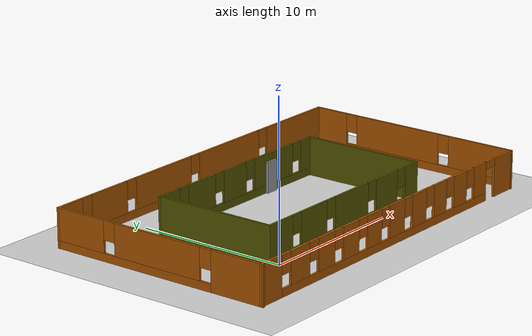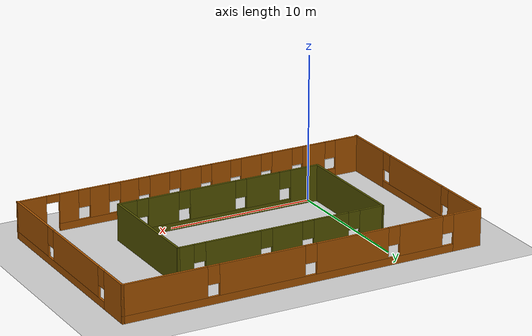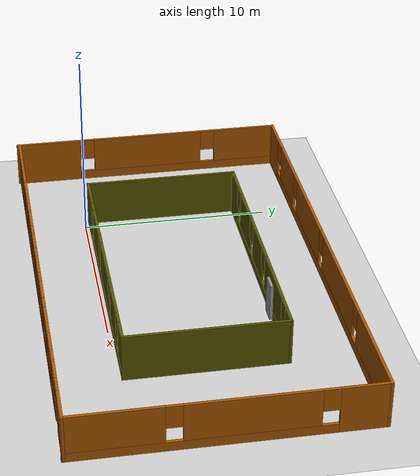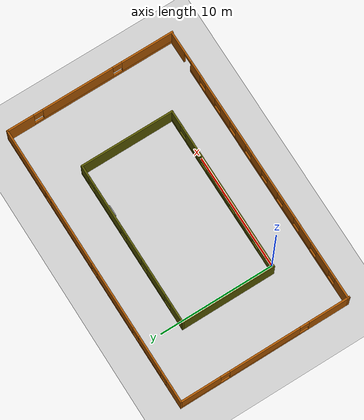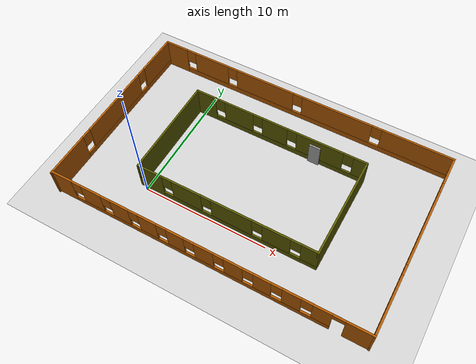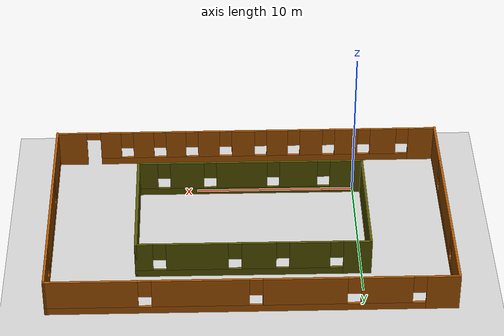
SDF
<sdf version="1.6">
 <world name="default">
  <model name="ground_plane">
   <static>1</static>
   <link name="link">
    <collision name="collision">
     <geometry><plane><normal>0 0 1</normal><size>100 100</size></plane></geometry>
     <surface><friction><ode><mu>100</mu><mu2>50</mu2></ode></friction></surface>
    </collision>
    <visual name="visual">
     <cast_shadows>0</cast_shadows>
     <geometry><plane><normal>0 0 1</normal><size>100 100</size></plane></geometry>
     <material>
      <script><uri>file://media/materials/scripts/gazebo.material</uri><name>Gazebo/Grey</name></script>
     </material>
    </visual>
   </link>
  </model>
  <model name="Building">
   <pose>6.81216 4.24314 0 0 -0 0</pose>
   <link name="Door_1">
    <collision name="Door_1_Collision">
     <geometry><box><size>0.9 0.17 2</size></box></geometry>
     <pose>0 0 1 0 -0 0</pose>
    </collision>
    <visual name="Door_1_Visual">
     <pose>0 0 1 0 -0 0</pose>
     <geometry><box><size>0.9 0.17 2</size></box></geometry>
     <material>
      <script><uri>file://media/materials/scripts/gazebo.material</uri><name>Gazebo/Grey</name></script>
     </material>
    </visual>
    <pose>2.94986 3.99433 0 0 -0 0</pose>
   </link>
   <link name="Wall_0">
    <pose>0 -7.35763 0 0 -0 0.002401</pose>
    <visual name="Wall_0_Visual_0">
     <pose>-11.5578 0 1.25 0 -0 0</pose>
     <geometry><box><size>1.79475 0.15 2.5</size></box></geometry>
     <material>
      <script><uri>file://media/materials/scripts/gazebo.material</uri><name>Gazebo/Grey</name></script>
      <ambient>0.666667 0.333333 0 1</ambient>
     </material>
     <meta><layer>0</layer></meta>
    </visual>
    <collision name="Wall_0_Collision_0">
     <geometry><box><size>1.79475 0.15 2.5</size></box></geometry>
     <pose>-11.5578 0 1.25 0 -0 0</pose>
    </collision>
    <visual name="Wall_0_Visual_1">
     <pose>11.4641 0 1.25 0 -0 0</pose>
     <geometry><box><size>1.98215 0.15 2.5</size></box></geometry>
     <material>
      <script><uri>file://media/materials/scripts/gazebo.material</uri><name>Gazebo/Grey</name></script>
      <ambient>0.666667 0.333333 0 1</ambient>
     </material>
     <meta><layer>0</layer></meta>
    </visual>
    <collision name="Wall_0_Collision_1">
     <geometry><box><size>1.98215 0.15 2.5</size></box></geometry>
     <pose>11.4641 0 1.25 0 -0 0</pose>
    </collision>
    <visual name="Wall_0_Visual_2">
     <pose>-0.543697 0 0.25 0 -0 0</pose>
     <geometry><box><size>20.2334 0.15 0.5</size></box></geometry>
     <material>
      <script><uri>file://media/materials/scripts/gazebo.material</uri><name>Gazebo/Grey</name></script>
      <ambient>0.666667 0.333333 0 1</ambient>
     </material>
     <meta><layer>0</layer></meta>
    </visual>
    <collision name="Wall_0_Collision_2">
     <geometry><box><size>20.2334 0.15 0.5</size></box></geometry>
     <pose>-0.543697 0 0.25 0 -0 0</pose>
    </collision>
    <visual name="Wall_0_Visual_3">
     <pose>-9.00211 0 1.5 0 -0 0</pose>
     <geometry><box><size>1.71659 0.15 2</size></box></geometry>
     <material>
      <script><uri>file://media/materials/scripts/gazebo.material</uri><name>Gazebo/Grey</name></script>
      <ambient>0.666667 0.333333 0 1</ambient>
     </material>
     <meta><layer>0</layer></meta>
    </visual>
    <collision name="Wall_0_Collision_3">
     <geometry><box><size>1.71659 0.15 2</size></box></geometry>
     <pose>-9.00211 0 1.5 0 -0 0</pose>
    </collision>
    <visual name="Wall_0_Visual_4">
     <pose>-6.57805 0 1.5 0 -0 0</pose>
     <geometry><box><size>1.53154 0.15 2</size></box></geometry>
     <material>
      <script><uri>file://media/materials/scripts/gazebo.material</uri><name>Gazebo/Grey</name></script>
      <ambient>0.666667 0.333333 0 1</ambient>
     </material>
     <meta><layer>0</layer></meta>
    </visual>
    <collision name="Wall_0_Collision_4">
     <geometry><box><size>1.53154 0.15 2</size></box></geometry>
     <pose>-6.57805 0 1.5 0 -0 0</pose>
    </collision>
    <visual name="Wall_0_Visual_5">
     <pose>-4.26501 0 1.5 0 -0 0</pose>
     <geometry><box><size>1.49454 0.15 2</size></box></geometry>
     <material>
      <script><uri>file://media/materials/scripts/gazebo.material</uri><name>Gazebo/Grey</name></script>
      <ambient>0.666667 0.333333 0 1</ambient>
     </material>
     <meta><layer>0</layer></meta>
    </visual>
    <collision name="Wall_0_Collision_5">
     <geometry><box><size>1.49454 0.15 2</size></box></geometry>
     <pose>-4.26501 0 1.5 0 -0 0</pose>
    </collision>
    <visual name="Wall_0_Visual_6">
     <pose>-2.02311 0 1.5 0 -0 0</pose>
     <geometry><box><size>1.38925 0.15 2</size></box></geometry>
     <material>
      <script><uri>file://media/materials/scripts/gazebo.material</uri><name>Gazebo/Grey</name></script>
      <ambient>0.666667 0.333333 0 1</ambient>
     </material>
     <meta><layer>0</layer></meta>
    </visual>
    <collision name="Wall_0_Collision_6">
     <geometry><box><size>1.38925 0.15 2</size></box></geometry>
     <pose>-2.02311 0 1.5 0 -0 0</pose>
    </collision>
    <visual name="Wall_0_Visual_7">
     <pose>0.21591 0 1.5 0 -0 0</pose>
     <geometry><box><size>1.48879 0.15 2</size></box></geometry>
     <material>
      <script><uri>file://media/materials/scripts/gazebo.material</uri><name>Gazebo/Grey</name></script>
      <ambient>0.666667 0.333333 0 1</ambient>
     </material>
     <meta><layer>0</layer></meta>
    </visual>
    <collision name="Wall_0_Collision_7">
     <geometry><box><size>1.48879 0.15 2</size></box></geometry>
     <pose>0.21591 0 1.5 0 -0 0</pose>
    </collision>
    <visual name="Wall_0_Visual_8">
     <pose>2.47057 0 1.5 0 -0 0</pose>
     <geometry><box><size>1.42052 0.15 2</size></box></geometry>
     <material>
      <script><uri>file://media/materials/scripts/gazebo.material</uri><name>Gazebo/Grey</name></script>
      <ambient>0.666667 0.333333 0 1</ambient>
     </material>
     <meta><layer>0</layer></meta>
    </visual>
    <collision name="Wall_0_Collision_8">
     <geometry><box><size>1.42052 0.15 2</size></box></geometry>
     <pose>2.47057 0 1.5 0 -0 0</pose>
    </collision>
    <visual name="Wall_0_Visual_9">
     <pose>4.63557 0 1.5 0 -0 0</pose>
     <geometry><box><size>1.30949 0.15 2</size></box></geometry>
     <material>
      <script><uri>file://media/materials/scripts/gazebo.material</uri><name>Gazebo/Grey</name></script>
      <ambient>0.666667 0.333333 0 1</ambient>
     </material>
     <meta><layer>0</layer></meta>
    </visual>
    <collision name="Wall_0_Collision_9">
     <geometry><box><size>1.30949 0.15 2</size></box></geometry>
     <pose>4.63557 0 1.5 0 -0 0</pose>
    </collision>
    <visual name="Wall_0_Visual_10">
     <pose>6.76357 0 1.5 0 -0 0</pose>
     <geometry><box><size>1.3465 0.15 2</size></box></geometry>
     <material>
      <script><uri>file://media/materials/scripts/gazebo.material</uri><name>Gazebo/Grey</name></script>
      <ambient>0.666667 0.333333 0 1</ambient>
     </material>
     <meta><layer>0</layer></meta>
    </visual>
    <collision name="Wall_0_Collision_10">
     <geometry><box><size>1.3465 0.15 2</size></box></geometry>
     <pose>6.76357 0 1.5 0 -0 0</pose>
    </collision>
    <visual name="Wall_0_Visual_11">
     <pose>8.90492 0 1.5 0 -0 0</pose>
     <geometry><box><size>1.33619 0.15 2</size></box></geometry>
     <material>
      <script><uri>file://media/materials/scripts/gazebo.material</uri><name>Gazebo/Grey</name></script>
      <ambient>0.666667 0.333333 0 1</ambient>
     </material>
     <meta><layer>0</layer></meta>
    </visual>
    <collision name="Wall_0_Collision_11">
     <geometry><box><size>1.33619 0.15 2</size></box></geometry>
     <pose>8.90492 0 1.5 0 -0 0</pose>
    </collision>
    <visual name="Wall_0_Visual_12">
     <pose>-10.2604 0 1.9 0 -0 0</pose>
     <geometry><box><size>0.8 0.15 1.2</size></box></geometry>
     <material>
      <script><uri>file://media/materials/scripts/gazebo.material</uri><name>Gazebo/Grey</name></script>
      <ambient>0.666667 0.333333 0 1</ambient>
     </material>
     <meta><layer>0</layer></meta>
    </visual>
    <collision name="Wall_0_Collision_12">
     <geometry><box><size>0.8 0.15 1.2</size></box></geometry>
     <pose>-10.2604 0 1.9 0 -0 0</pose>
    </collision>
    <visual name="Wall_0_Visual_13">
     <pose>-7.74382 0 1.9 0 -0 0</pose>
     <geometry><box><size>0.8 0.15 1.2</size></box></geometry>
     <material>
      <script><uri>file://media/materials/scripts/gazebo.material</uri><name>Gazebo/Grey</name></script>
      <ambient>0.666667 0.333333 0 1</ambient>
     </material>
     <meta><layer>0</layer></meta>
    </visual>
    <collision name="Wall_0_Collision_13">
     <geometry><box><size>0.8 0.15 1.2</size></box></geometry>
     <pose>-7.74382 0 1.9 0 -0 0</pose>
    </collision>
    <visual name="Wall_0_Visual_14">
     <pose>-5.41228 0 1.9 0 -0 0</pose>
     <geometry><box><size>0.8 0.15 1.2</size></box></geometry>
     <material>
      <script><uri>file://media/materials/scripts/gazebo.material</uri><name>Gazebo/Grey</name></script>
      <ambient>0.666667 0.333333 0 1</ambient>
     </material>
     <meta><layer>0</layer></meta>
    </visual>
    <collision name="Wall_0_Collision_14">
     <geometry><box><size>0.8 0.15 1.2</size></box></geometry>
     <pose>-5.41228 0 1.9 0 -0 0</pose>
    </collision>
    <visual name="Wall_0_Visual_15">
     <pose>-3.11774 0 1.9 0 -0 0</pose>
     <geometry><box><size>0.8 0.15 1.2</size></box></geometry>
     <material>
      <script><uri>file://media/materials/scripts/gazebo.material</uri><name>Gazebo/Grey</name></script>
      <ambient>0.666667 0.333333 0 1</ambient>
     </material>
     <meta><layer>0</layer></meta>
    </visual>
    <collision name="Wall_0_Collision_15">
     <geometry><box><size>0.8 0.15 1.2</size></box></geometry>
     <pose>-3.11774 0 1.9 0 -0 0</pose>
    </collision>
    <visual name="Wall_0_Visual_16">
     <pose>-0.928486 0 1.9 0 -0 0</pose>
     <geometry><box><size>0.8 0.15 1.2</size></box></geometry>
     <material>
      <script><uri>file://media/materials/scripts/gazebo.material</uri><name>Gazebo/Grey</name></script>
      <ambient>0.666667 0.333333 0 1</ambient>
     </material>
     <meta><layer>0</layer></meta>
    </visual>
    <collision name="Wall_0_Collision_16">
     <geometry><box><size>0.8 0.15 1.2</size></box></geometry>
     <pose>-0.928486 0 1.9 0 -0 0</pose>
    </collision>
    <visual name="Wall_0_Visual_17">
     <pose>1.36031 0 1.9 0 -0 0</pose>
     <geometry><box><size>0.8 0.15 1.2</size></box></geometry>
     <material>
      <script><uri>file://media/materials/scripts/gazebo.material</uri><name>Gazebo/Grey</name></script>
      <ambient>0.666667 0.333333 0 1</ambient>
     </material>
     <meta><layer>0</layer></meta>
    </visual>
    <collision name="Wall_0_Collision_17">
     <geometry><box><size>0.8 0.15 1.2</size></box></geometry>
     <pose>1.36031 0 1.9 0 -0 0</pose>
    </collision>
    <visual name="Wall_0_Visual_18">
     <pose>3.58083 0 1.9 0 -0 0</pose>
     <geometry><box><size>0.8 0.15 1.2</size></box></geometry>
     <material>
      <script><uri>file://media/materials/scripts/gazebo.material</uri><name>Gazebo/Grey</name></script>
      <ambient>0.666667 0.333333 0 1</ambient>
     </material>
     <meta><layer>0</layer></meta>
    </visual>
    <collision name="Wall_0_Collision_18">
     <geometry><box><size>0.8 0.15 1.2</size></box></geometry>
     <pose>3.58083 0 1.9 0 -0 0</pose>
    </collision>
    <visual name="Wall_0_Visual_19">
     <pose>5.69032 0 1.9 0 -0 0</pose>
     <geometry><box><size>0.8 0.15 1.2</size></box></geometry>
     <material>
      <script><uri>file://media/materials/scripts/gazebo.material</uri><name>Gazebo/Grey</name></script>
      <ambient>0.666667 0.333333 0 1</ambient>
     </material>
     <meta><layer>0</layer></meta>
    </visual>
    <collision name="Wall_0_Collision_19">
     <geometry><box><size>0.8 0.15 1.2</size></box></geometry>
     <pose>5.69032 0 1.9 0 -0 0</pose>
    </collision>
    <visual name="Wall_0_Visual_20">
     <pose>7.83682 0 1.9 0 -0 0</pose>
     <geometry><box><size>0.8 0.15 1.2</size></box></geometry>
     <material>
      <script><uri>file://media/materials/scripts/gazebo.material</uri><name>Gazebo/Grey</name></script>
      <ambient>0.666667 0.333333 0 1</ambient>
     </material>
     <meta><layer>0</layer></meta>
    </visual>
    <collision name="Wall_0_Collision_20">
     <geometry><box><size>0.8 0.15 1.2</size></box></geometry>
     <pose>7.83682 0 1.9 0 -0 0</pose>
    </collision>
    <visual name="Wall_0_Visual_21">
     <pose>10.023 0 2.25 0 -0 0</pose>
     <geometry><box><size>0.9 0.15 0.5</size></box></geometry>
     <material>
      <script><uri>file://media/materials/scripts/gazebo.material</uri><name>Gazebo/Grey</name></script>
      <ambient>0.666667 0.333333 0 1</ambient>
     </material>
     <meta><layer>0</layer></meta>
    </visual>
    <collision name="Wall_0_Collision_21">
     <geometry><box><size>0.9 0.15 0.5</size></box></geometry>
     <pose>10.023 0 2.25 0 -0 0</pose>
    </collision>
   </link>
   <link name="Wall_12">
    <collision name="Wall_12_Collision">
     <geometry><box><size>8.25 0.15 2.5</size></box></geometry>
     <pose>0 0 1.25 0 -0 0</pose>
    </collision>
    <visual name="Wall_12_Visual">
     <pose>0 0 1.25 0 -0 0</pose>
     <geometry><box><size>8.25 0.15 2.5</size></box></geometry>
     <material>
      <script><uri>file://media/materials/scripts/gazebo.material</uri><name>Gazebo/Grey</name></script>
      <ambient>0.333333 0.333333 0 1</ambient>
     </material>
     <meta><layer>0</layer></meta>
    </visual>
    <pose>-7.34158 0.069621 0 0 0 -1.5708</pose>
   </link>
   <link name="Wall_17">
    <pose>-0.166583 -3.98038 0 0 -0 0</pose>
    <visual name="Wall_17_Visual_0">
     <pose>-6.19156 0 1.25 0 -0 0</pose>
     <geometry><box><size>2.11688 0.15 2.5</size></box></geometry>
     <material>
      <script><uri>file://media/materials/scripts/gazebo.material</uri><name>Gazebo/Grey</name></script>
      <ambient>0.333333 0.333333 0 1</ambient>
     </material>
     <meta><layer>0</layer></meta>
    </visual>
    <collision name="Wall_17_Collision_0">
     <geometry><box><size>2.11688 0.15 2.5</size></box></geometry>
     <pose>-6.19156 0 1.25 0 -0 0</pose>
    </collision>
    <visual name="Wall_17_Visual_1">
     <pose>1.05844 0 0.25 0 -0 0</pose>
     <geometry><box><size>12.3831 0.15 0.5</size></box></geometry>
     <material>
      <script><uri>file://media/materials/scripts/gazebo.material</uri><name>Gazebo/Grey</name></script>
      <ambient>0.333333 0.333333 0 1</ambient>
     </material>
     <meta><layer>0</layer></meta>
    </visual>
    <collision name="Wall_17_Collision_1">
     <geometry><box><size>12.3831 0.15 0.5</size></box></geometry>
     <pose>1.05844 0 0.25 0 -0 0</pose>
    </collision>
    <visual name="Wall_17_Visual_2">
     <pose>-3.10907 0 1.5 0 -0 0</pose>
     <geometry><box><size>2.4481 0.15 2</size></box></geometry>
     <material>
      <script><uri>file://media/materials/scripts/gazebo.material</uri><name>Gazebo/Grey</name></script>
      <ambient>0.333333 0.333333 0 1</ambient>
     </material>
     <meta><layer>0</layer></meta>
    </visual>
    <collision name="Wall_17_Collision_2">
     <geometry><box><size>2.4481 0.15 2</size></box></geometry>
     <pose>-3.10907 0 1.5 0 -0 0</pose>
    </collision>
    <visual name="Wall_17_Visual_3">
     <pose>0.545036 0 1.5 0 -0 0</pose>
     <geometry><box><size>3.26012 0.15 2</size></box></geometry>
     <material>
      <script><uri>file://media/materials/scripts/gazebo.material</uri><name>Gazebo/Grey</name></script>
      <ambient>0.333333 0.333333 0 1</ambient>
     </material>
     <meta><layer>0</layer></meta>
    </visual>
    <collision name="Wall_17_Collision_3">
     <geometry><box><size>3.26012 0.15 2</size></box></geometry>
     <pose>0.545036 0 1.5 0 -0 0</pose>
    </collision>
    <visual name="Wall_17_Visual_4">
     <pose>4.05839 0 1.5 0 -0 0</pose>
     <geometry><box><size>2.1666 0.15 2</size></box></geometry>
     <material>
      <script><uri>file://media/materials/scripts/gazebo.material</uri><name>Gazebo/Grey</name></script>
      <ambient>0.333333 0.333333 0 1</ambient>
     </material>
     <meta><layer>0</layer></meta>
    </visual>
    <collision name="Wall_17_Collision_4">
     <geometry><box><size>2.1666 0.15 2</size></box></geometry>
     <pose>4.05839 0 1.5 0 -0 0</pose>
    </collision>
    <visual name="Wall_17_Visual_5">
     <pose>6.59585 0 1.5 0 -0 0</pose>
     <geometry><box><size>1.30831 0.15 2</size></box></geometry>
     <material>
      <script><uri>file://media/materials/scripts/gazebo.material</uri><name>Gazebo/Grey</name></script>
      <ambient>0.333333 0.333333 0 1</ambient>
     </material>
     <meta><layer>0</layer></meta>
    </visual>
    <collision name="Wall_17_Collision_5">
     <geometry><box><size>1.30831 0.15 2</size></box></geometry>
     <pose>6.59585 0 1.5 0 -0 0</pose>
    </collision>
    <visual name="Wall_17_Visual_6">
     <pose>-4.73312 0 1.9 0 -0 0</pose>
     <geometry><box><size>0.8 0.15 1.2</size></box></geometry>
     <material>
      <script><uri>file://media/materials/scripts/gazebo.material</uri><name>Gazebo/Grey</name></script>
      <ambient>0.333333 0.333333 0 1</ambient>
     </material>
     <meta><layer>0</layer></meta>
    </visual>
    <collision name="Wall_17_Collision_6">
     <geometry><box><size>0.8 0.15 1.2</size></box></geometry>
     <pose>-4.73312 0 1.9 0 -0 0</pose>
    </collision>
    <visual name="Wall_17_Visual_7">
     <pose>-1.48502 0 1.9 0 -0 0</pose>
     <geometry><box><size>0.8 0.15 1.2</size></box></geometry>
     <material>
      <script><uri>file://media/materials/scripts/gazebo.material</uri><name>Gazebo/Grey</name></script>
      <ambient>0.333333 0.333333 0 1</ambient>
     </material>
     <meta><layer>0</layer></meta>
    </visual>
    <collision name="Wall_17_Collision_7">
     <geometry><box><size>0.8 0.15 1.2</size></box></geometry>
     <pose>-1.48502 0 1.9 0 -0 0</pose>
    </collision>
    <visual name="Wall_17_Visual_8">
     <pose>2.5751 0 1.9 0 -0 0</pose>
     <geometry><box><size>0.8 0.15 1.2</size></box></geometry>
     <material>
      <script><uri>file://media/materials/scripts/gazebo.material</uri><name>Gazebo/Grey</name></script>
      <ambient>0.333333 0.333333 0 1</ambient>
     </material>
     <meta><layer>0</layer></meta>
    </visual>
    <collision name="Wall_17_Collision_8">
     <geometry><box><size>0.8 0.15 1.2</size></box></geometry>
     <pose>2.5751 0 1.9 0 -0 0</pose>
    </collision>
    <visual name="Wall_17_Visual_9">
     <pose>5.54169 0 1.9 0 -0 0</pose>
     <geometry><box><size>0.8 0.15 1.2</size></box></geometry>
     <material>
      <script><uri>file://media/materials/scripts/gazebo.material</uri><name>Gazebo/Grey</name></script>
      <ambient>0.333333 0.333333 0 1</ambient>
     </material>
     <meta><layer>0</layer></meta>
    </visual>
    <collision name="Wall_17_Collision_9">
     <geometry><box><size>0.8 0.15 1.2</size></box></geometry>
     <pose>5.54169 0 1.9 0 -0 0</pose>
    </collision>
   </link>
   <link name="Wall_18">
    <collision name="Wall_18_Collision">
     <geometry><box><size>8.25 0.15 2.5</size></box></geometry>
     <pose>0 0 1.25 0 -0 0</pose>
    </collision>
    <visual name="Wall_18_Visual">
     <pose>0 0 1.25 0 -0 0</pose>
     <geometry><box><size>8.25 0.15 2.5</size></box></geometry>
     <material>
      <script><uri>file://media/materials/scripts/gazebo.material</uri><name>Gazebo/Grey</name></script>
      <ambient>0.333333 0.333333 0 1</ambient>
     </material>
     <meta><layer>0</layer></meta>
    </visual>
    <pose>7.00842 0.069621 0 0 -0 1.5708</pose>
   </link>
   <link name="Wall_20">
    <pose>-0.166583 4.11962 0 0 -0 0</pose>
    <visual name="Wall_20_Visual_0">
     <pose>-6.37201 0 1.25 0 -0 0</pose>
     <geometry><box><size>1.75598 0.15 2.5</size></box></geometry>
     <material>
      <script><uri>file://media/materials/scripts/gazebo.material</uri><name>Gazebo/Grey</name></script>
      <ambient>0.333333 0.333333 0 1</ambient>
     </material>
     <meta><layer>0</layer></meta>
    </visual>
    <collision name="Wall_20_Collision_0">
     <geometry><box><size>1.75598 0.15 2.5</size></box></geometry>
     <pose>-6.37201 0 1.25 0 -0 0</pose>
    </collision>
    <visual name="Wall_20_Visual_1">
     <pose>0.87799 0 0.25 0 -0 0</pose>
     <geometry><box><size>12.744 0.15 0.5</size></box></geometry>
     <material>
      <script><uri>file://media/materials/scripts/gazebo.material</uri><name>Gazebo/Grey</name></script>
      <ambient>0.333333 0.333333 0 1</ambient>
     </material>
     <meta><layer>0</layer></meta>
    </visual>
    <collision name="Wall_20_Collision_1">
     <geometry><box><size>12.744 0.15 0.5</size></box></geometry>
     <pose>0.87799 0 0.25 0 -0 0</pose>
    </collision>
    <visual name="Wall_20_Visual_2">
     <pose>-3.44742 0 1.5 0 -0 0</pose>
     <geometry><box><size>2.49321 0.15 2</size></box></geometry>
     <material>
      <script><uri>file://media/materials/scripts/gazebo.material</uri><name>Gazebo/Grey</name></script>
      <ambient>0.333333 0.333333 0 1</ambient>
     </material>
     <meta><layer>0</layer></meta>
    </visual>
    <collision name="Wall_20_Collision_2">
     <geometry><box><size>2.49321 0.15 2</size></box></geometry>
     <pose>-3.44742 0 1.5 0 -0 0</pose>
    </collision>
    <visual name="Wall_20_Visual_3">
     <pose>-0.334657 0 1.5 0 -0 0</pose>
     <geometry><box><size>2.13231 0.15 2</size></box></geometry>
     <material>
      <script><uri>file://media/materials/scripts/gazebo.material</uri><name>Gazebo/Grey</name></script>
      <ambient>0.333333 0.333333 0 1</ambient>
     </material>
     <meta><layer>0</layer></meta>
    </visual>
    <collision name="Wall_20_Collision_3">
     <geometry><box><size>2.13231 0.15 2</size></box></geometry>
     <pose>-0.334657 0 1.5 0 -0 0</pose>
    </collision>
    <visual name="Wall_20_Visual_4">
     <pose>3.43223 0 1.5 0 -0 0</pose>
     <geometry><box><size>3.80147 0.15 2</size></box></geometry>
     <material>
      <script><uri>file://media/materials/scripts/gazebo.material</uri><name>Gazebo/Grey</name></script>
      <ambient>0.333333 0.333333 0 1</ambient>
     </material>
     <meta><layer>0</layer></meta>
    </visual>
    <collision name="Wall_20_Collision_4">
     <geometry><box><size>3.80147 0.15 2</size></box></geometry>
     <pose>3.43223 0 1.5 0 -0 0</pose>
    </collision>
    <visual name="Wall_20_Visual_5">
     <pose>6.69148 0 1.5 0 -0 0</pose>
     <geometry><box><size>1.11703 0.15 2</size></box></geometry>
     <material>
      <script><uri>file://media/materials/scripts/gazebo.material</uri><name>Gazebo/Grey</name></script>
      <ambient>0.333333 0.333333 0 1</ambient>
     </material>
     <meta><layer>0</layer></meta>
    </visual>
    <collision name="Wall_20_Collision_5">
     <geometry><box><size>1.11703 0.15 2</size></box></geometry>
     <pose>6.69148 0 1.5 0 -0 0</pose>
    </collision>
    <visual name="Wall_20_Visual_6">
     <pose>-5.09402 0 1.9 0 -0 0</pose>
     <geometry><box><size>0.8 0.15 1.2</size></box></geometry>
     <material>
      <script><uri>file://media/materials/scripts/gazebo.material</uri><name>Gazebo/Grey</name></script>
      <ambient>0.333333 0.333333 0 1</ambient>
     </material>
     <meta><layer>0</layer></meta>
    </visual>
    <collision name="Wall_20_Collision_6">
     <geometry><box><size>0.8 0.15 1.2</size></box></geometry>
     <pose>-5.09402 0 1.9 0 -0 0</pose>
    </collision>
    <visual name="Wall_20_Visual_7">
     <pose>-1.80081 0 1.9 0 -0 0</pose>
     <geometry><box><size>0.8 0.15 1.2</size></box></geometry>
     <material>
      <script><uri>file://media/materials/scripts/gazebo.material</uri><name>Gazebo/Grey</name></script>
      <ambient>0.333333 0.333333 0 1</ambient>
     </material>
     <meta><layer>0</layer></meta>
    </visual>
    <collision name="Wall_20_Collision_7">
     <geometry><box><size>0.8 0.15 1.2</size></box></geometry>
     <pose>-1.80081 0 1.9 0 -0 0</pose>
    </collision>
    <visual name="Wall_20_Visual_8">
     <pose>1.1315 0 1.9 0 -0 0</pose>
     <geometry><box><size>0.8 0.15 1.2</size></box></geometry>
     <material>
      <script><uri>file://media/materials/scripts/gazebo.material</uri><name>Gazebo/Grey</name></script>
      <ambient>0.333333 0.333333 0 1</ambient>
     </material>
     <meta><layer>0</layer></meta>
    </visual>
    <collision name="Wall_20_Collision_8">
     <geometry><box><size>0.8 0.15 1.2</size></box></geometry>
     <pose>1.1315 0 1.9 0 -0 0</pose>
    </collision>
    <visual name="Wall_20_Visual_9">
     <pose>5.73297 0 1.9 0 -0 0</pose>
     <geometry><box><size>0.8 0.15 1.2</size></box></geometry>
     <material>
      <script><uri>file://media/materials/scripts/gazebo.material</uri><name>Gazebo/Grey</name></script>
      <ambient>0.333333 0.333333 0 1</ambient>
     </material>
     <meta><layer>0</layer></meta>
    </visual>
    <collision name="Wall_20_Collision_9">
     <geometry><box><size>0.8 0.15 1.2</size></box></geometry>
     <pose>5.73297 0 1.9 0 -0 0</pose>
    </collision>
   </link>
   <link name="Wall_3">
    <pose>-12.3798 -0.052578 0 0 -0 1.5708</pose>
    <visual name="Wall_3_Visual_0">
     <pose>-5.67059 0 1.25 0 -0 0</pose>
     <geometry><box><size>3.65881 0.15 2.5</size></box></geometry>
     <material>
      <script><uri>file://media/materials/scripts/gazebo.material</uri><name>Gazebo/Grey</name></script>
      <ambient>0.666667 0.333333 0 1</ambient>
     </material>
     <meta><layer>0</layer></meta>
    </visual>
    <collision name="Wall_3_Collision_0">
     <geometry><box><size>3.65881 0.15 2.5</size></box></geometry>
     <pose>-5.67059 0 1.25 0 -0 0</pose>
    </collision>
    <visual name="Wall_3_Visual_1">
     <pose>1.8294 0 0.25 0 -0 0</pose>
     <geometry><box><size>11.3412 0.15 0.5</size></box></geometry>
     <material>
      <script><uri>file://media/materials/scripts/gazebo.material</uri><name>Gazebo/Grey</name></script>
      <ambient>0.666667 0.333333 0 1</ambient>
     </material>
     <meta><layer>0</layer></meta>
    </visual>
    <collision name="Wall_3_Collision_1">
     <geometry><box><size>11.3412 0.15 0.5</size></box></geometry>
     <pose>1.8294 0 0.25 0 -0 0</pose>
    </collision>
    <visual name="Wall_3_Visual_2">
     <pose>0.084691 0 1.5 0 -0 0</pose>
     <geometry><box><size>6.25176 0.15 2</size></box></geometry>
     <material>
      <script><uri>file://media/materials/scripts/gazebo.material</uri><name>Gazebo/Grey</name></script>
      <ambient>0.666667 0.333333 0 1</ambient>
     </material>
     <meta><layer>0</layer></meta>
    </visual>
    <collision name="Wall_3_Collision_2">
     <geometry><box><size>6.25176 0.15 2</size></box></geometry>
     <pose>0.084691 0 1.5 0 -0 0</pose>
    </collision>
    <visual name="Wall_3_Visual_3">
     <pose>5.75528 0 1.5 0 -0 0</pose>
     <geometry><box><size>3.48943 0.15 2</size></box></geometry>
     <material>
      <script><uri>file://media/materials/scripts/gazebo.material</uri><name>Gazebo/Grey</name></script>
      <ambient>0.666667 0.333333 0 1</ambient>
     </material>
     <meta><layer>0</layer></meta>
    </visual>
    <collision name="Wall_3_Collision_3">
     <geometry><box><size>3.48943 0.15 2</size></box></geometry>
     <pose>5.75528 0 1.5 0 -0 0</pose>
    </collision>
    <visual name="Wall_3_Visual_4">
     <pose>-3.44119 0 1.9 0 -0 0</pose>
     <geometry><box><size>0.8 0.15 1.2</size></box></geometry>
     <material>
      <script><uri>file://media/materials/scripts/gazebo.material</uri><name>Gazebo/Grey</name></script>
      <ambient>0.666667 0.333333 0 1</ambient>
     </material>
     <meta><layer>0</layer></meta>
    </visual>
    <collision name="Wall_3_Collision_4">
     <geometry><box><size>0.8 0.15 1.2</size></box></geometry>
     <pose>-3.44119 0 1.9 0 -0 0</pose>
    </collision>
    <visual name="Wall_3_Visual_5">
     <pose>3.61057 0 1.9 0 -0 0</pose>
     <geometry><box><size>0.8 0.15 1.2</size></box></geometry>
     <material>
      <script><uri>file://media/materials/scripts/gazebo.material</uri><name>Gazebo/Grey</name></script>
      <ambient>0.666667 0.333333 0 1</ambient>
     </material>
     <meta><layer>0</layer></meta>
    </visual>
    <collision name="Wall_3_Collision_5">
     <geometry><box><size>0.8 0.15 1.2</size></box></geometry>
     <pose>3.61057 0 1.9 0 -0 0</pose>
    </collision>
   </link>
   <link name="Wall_6">
    <pose>0.000109 7.47009 0 0 -0 0.000601</pose>
    <visual name="Wall_6_Visual_0">
     <pose>-11.4439 0 1.25 0 -0 0</pose>
     <geometry><box><size>2.02242 0.15 2.5</size></box></geometry>
     <material>
      <script><uri>file://media/materials/scripts/gazebo.material</uri><name>Gazebo/Grey</name></script>
      <ambient>0.666667 0.333333 0 1</ambient>
     </material>
     <meta><layer>0</layer></meta>
    </visual>
    <collision name="Wall_6_Collision_0">
     <geometry><box><size>2.02242 0.15 2.5</size></box></geometry>
     <pose>-11.4439 0 1.25 0 -0 0</pose>
    </collision>
    <visual name="Wall_6_Visual_1">
     <pose>1.01121 0 0.25 0 -0 0</pose>
     <geometry><box><size>22.8878 0.15 0.5</size></box></geometry>
     <material>
      <script><uri>file://media/materials/scripts/gazebo.material</uri><name>Gazebo/Grey</name></script>
      <ambient>0.666667 0.333333 0 1</ambient>
     </material>
     <meta><layer>0</layer></meta>
    </visual>
    <collision name="Wall_6_Collision_1">
     <geometry><box><size>22.8878 0.15 0.5</size></box></geometry>
     <pose>1.01121 0 0.25 0 -0 0</pose>
    </collision>
    <visual name="Wall_6_Visual_2">
     <pose>-8.07503 0 1.5 0 -0 0</pose>
     <geometry><box><size>3.11533 0.15 2</size></box></geometry>
     <material>
      <script><uri>file://media/materials/scripts/gazebo.material</uri><name>Gazebo/Grey</name></script>
      <ambient>0.666667 0.333333 0 1</ambient>
     </material>
     <meta><layer>0</layer></meta>
    </visual>
    <collision name="Wall_6_Collision_2">
     <geometry><box><size>3.11533 0.15 2</size></box></geometry>
     <pose>-8.07503 0 1.5 0 -0 0</pose>
    </collision>
    <visual name="Wall_6_Visual_3">
     <pose>-3.18084 0 1.5 0 -0 0</pose>
     <geometry><box><size>5.07304 0.15 2</size></box></geometry>
     <material>
      <script><uri>file://media/materials/scripts/gazebo.material</uri><name>Gazebo/Grey</name></script>
      <ambient>0.666667 0.333333 0 1</ambient>
     </material>
     <meta><layer>0</layer></meta>
    </visual>
    <collision name="Wall_6_Collision_3">
     <geometry><box><size>5.07304 0.15 2</size></box></geometry>
     <pose>-3.18084 0 1.5 0 -0 0</pose>
    </collision>
    <visual name="Wall_6_Visual_4">
     <pose>3.07789 0 1.5 0 -0 0</pose>
     <geometry><box><size>5.84443 0.15 2</size></box></geometry>
     <material>
      <script><uri>file://media/materials/scripts/gazebo.material</uri><name>Gazebo/Grey</name></script>
      <ambient>0.666667 0.333333 0 1</ambient>
     </material>
     <meta><layer>0</layer></meta>
    </visual>
    <collision name="Wall_6_Collision_4">
     <geometry><box><size>5.84443 0.15 2</size></box></geometry>
     <pose>3.07789 0 1.5 0 -0 0</pose>
    </collision>
    <visual name="Wall_6_Visual_5">
     <pose>9.62761 0 1.5 0 -0 0</pose>
     <geometry><box><size>5.65501 0.15 2</size></box></geometry>
     <material>
      <script><uri>file://media/materials/scripts/gazebo.material</uri><name>Gazebo/Grey</name></script>
      <ambient>0.666667 0.333333 0 1</ambient>
     </material>
     <meta><layer>0</layer></meta>
    </visual>
    <collision name="Wall_6_Collision_5">
     <geometry><box><size>5.65501 0.15 2</size></box></geometry>
     <pose>9.62761 0 1.5 0 -0 0</pose>
    </collision>
    <visual name="Wall_6_Visual_6">
     <pose>-10.0327 0 1.9 0 -0 0</pose>
     <geometry><box><size>0.8 0.15 1.2</size></box></geometry>
     <material>
      <script><uri>file://media/materials/scripts/gazebo.material</uri><name>Gazebo/Grey</name></script>
      <ambient>0.666667 0.333333 0 1</ambient>
     </material>
     <meta><layer>0</layer></meta>
    </visual>
    <collision name="Wall_6_Collision_6">
     <geometry><box><size>0.8 0.15 1.2</size></box></geometry>
     <pose>-10.0327 0 1.9 0 -0 0</pose>
    </collision>
    <visual name="Wall_6_Visual_7">
     <pose>-6.11736 0 1.9 0 -0 0</pose>
     <geometry><box><size>0.8 0.15 1.2</size></box></geometry>
     <material>
      <script><uri>file://media/materials/scripts/gazebo.material</uri><name>Gazebo/Grey</name></script>
      <ambient>0.666667 0.333333 0 1</ambient>
     </material>
     <meta><layer>0</layer></meta>
    </visual>
    <collision name="Wall_6_Collision_7">
     <geometry><box><size>0.8 0.15 1.2</size></box></geometry>
     <pose>-6.11736 0 1.9 0 -0 0</pose>
    </collision>
    <visual name="Wall_6_Visual_8">
     <pose>-0.244321 0 1.9 0 -0 0</pose>
     <geometry><box><size>0.8 0.15 1.2</size></box></geometry>
     <material>
      <script><uri>file://media/materials/scripts/gazebo.material</uri><name>Gazebo/Grey</name></script>
      <ambient>0.666667 0.333333 0 1</ambient>
     </material>
     <meta><layer>0</layer></meta>
    </visual>
    <collision name="Wall_6_Collision_8">
     <geometry><box><size>0.8 0.15 1.2</size></box></geometry>
     <pose>-0.244321 0 1.9 0 -0 0</pose>
    </collision>
    <visual name="Wall_6_Visual_9">
     <pose>6.40011 0 1.9 0 -0 0</pose>
     <geometry><box><size>0.8 0.15 1.2</size></box></geometry>
     <material>
      <script><uri>file://media/materials/scripts/gazebo.material</uri><name>Gazebo/Grey</name></script>
      <ambient>0.666667 0.333333 0 1</ambient>
     </material>
     <meta><layer>0</layer></meta>
    </visual>
    <collision name="Wall_6_Collision_9">
     <geometry><box><size>0.8 0.15 1.2</size></box></geometry>
     <pose>6.40011 0 1.9 0 -0 0</pose>
    </collision>
   </link>
   <link name="Wall_9">
    <pose>12.38 0.052534 0 0 0 -1.5708</pose>
    <visual name="Wall_9_Visual_0">
     <pose>-6.29597 0 1.25 0 -0 0</pose>
     <geometry><box><size>2.40805 0.15 2.5</size></box></geometry>
     <material>
      <script><uri>file://media/materials/scripts/gazebo.material</uri><name>Gazebo/Grey</name></script>
      <ambient>0.666667 0.333333 0 1</ambient>
     </material>
     <meta><layer>0</layer></meta>
    </visual>
    <collision name="Wall_9_Collision_0">
     <geometry><box><size>2.40805 0.15 2.5</size></box></geometry>
     <pose>-6.29597 0 1.25 0 -0 0</pose>
    </collision>
    <visual name="Wall_9_Visual_1">
     <pose>1.20403 0 0.25 0 -0 0</pose>
     <geometry><box><size>12.5919 0.15 0.5</size></box></geometry>
     <material>
      <script><uri>file://media/materials/scripts/gazebo.material</uri><name>Gazebo/Grey</name></script>
      <ambient>0.666667 0.333333 0 1</ambient>
     </material>
     <meta><layer>0</layer></meta>
    </visual>
    <collision name="Wall_9_Collision_1">
     <geometry><box><size>12.5919 0.15 0.5</size></box></geometry>
     <pose>1.20403 0 0.25 0 -0 0</pose>
    </collision>
    <visual name="Wall_9_Visual_2">
     <pose>-1.13249 0 1.5 0 -0 0</pose>
     <geometry><box><size>6.31892 0.15 2</size></box></geometry>
     <material>
      <script><uri>file://media/materials/scripts/gazebo.material</uri><name>Gazebo/Grey</name></script>
      <ambient>0.666667 0.333333 0 1</ambient>
     </material>
     <meta><layer>0</layer></meta>
    </visual>
    <collision name="Wall_9_Collision_2">
     <geometry><box><size>6.31892 0.15 2</size></box></geometry>
     <pose>-1.13249 0 1.5 0 -0 0</pose>
    </collision>
    <visual name="Wall_9_Visual_3">
     <pose>5.16349 0 1.5 0 -0 0</pose>
     <geometry><box><size>4.67303 0.15 2</size></box></geometry>
     <material>
      <script><uri>file://media/materials/scripts/gazebo.material</uri><name>Gazebo/Grey</name></script>
      <ambient>0.666667 0.333333 0 1</ambient>
     </material>
     <meta><layer>0</layer></meta>
    </visual>
    <collision name="Wall_9_Collision_3">
     <geometry><box><size>4.67303 0.15 2</size></box></geometry>
     <pose>5.16349 0 1.5 0 -0 0</pose>
    </collision>
    <visual name="Wall_9_Visual_4">
     <pose>-4.69195 0 1.9 0 -0 0</pose>
     <geometry><box><size>0.8 0.15 1.2</size></box></geometry>
     <material>
      <script><uri>file://media/materials/scripts/gazebo.material</uri><name>Gazebo/Grey</name></script>
      <ambient>0.666667 0.333333 0 1</ambient>
     </material>
     <meta><layer>0</layer></meta>
    </visual>
    <collision name="Wall_9_Collision_4">
     <geometry><box><size>0.8 0.15 1.2</size></box></geometry>
     <pose>-4.69195 0 1.9 0 -0 0</pose>
    </collision>
    <visual name="Wall_9_Visual_5">
     <pose>2.42697 0 1.9 0 -0 0</pose>
     <geometry><box><size>0.8 0.15 1.2</size></box></geometry>
     <material>
      <script><uri>file://media/materials/scripts/gazebo.material</uri><name>Gazebo/Grey</name></script>
      <ambient>0.666667 0.333333 0 1</ambient>
     </material>
     <meta><layer>0</layer></meta>
    </visual>
    <collision name="Wall_9_Collision_5">
     <geometry><box><size>0.8 0.15 1.2</size></box></geometry>
     <pose>2.42697 0 1.9 0 -0 0</pose>
    </collision>
   </link>
   <static>1</static>
  </model>
 </world>
</sdf>
